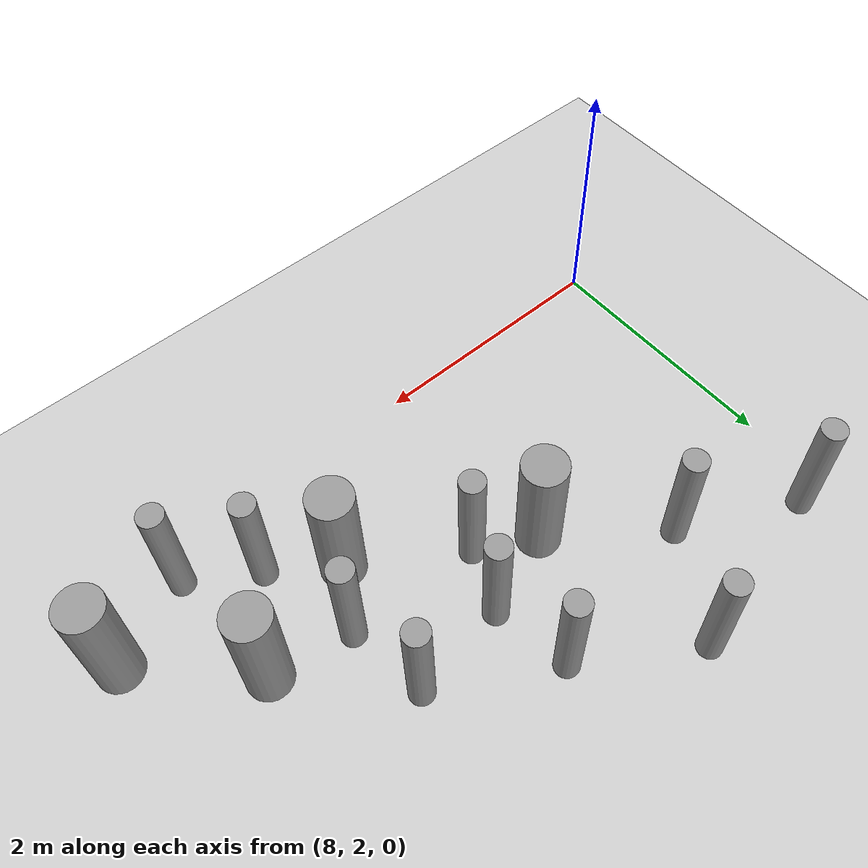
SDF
<sdf version="1.6">
 <world name="default">
  <model name="ground_plane">
   <static>1</static>
   <link name="link">
    <collision name="collision">
     <geometry><plane><normal>0 0 1</normal><size>100 100</size></plane></geometry>
     <surface><friction><ode><mu>100</mu><mu2>50</mu2></ode></friction></surface>
    </collision>
    <visual name="visual">
     <cast_shadows>0</cast_shadows>
     <geometry><plane><normal>0 0 1</normal><size>100 100</size></plane></geometry>
     <material>
      <script><uri>file://media/materials/scripts/gazebo.material</uri><name>Gazebo/Grey</name></script>
     </material>
    </visual>
   </link>
  </model>
  <model name="cyl_wall_clone_clone_1_clone_2">
   <link name="link_0">
    <pose>-2.73893 -0.366465 0 0 -0 0</pose>
    <inertial>
     <mass>0.0374993</mass>
     <inertia>
      <ixx>0.00321281</ixx>
      <ixy>0</ixy>
      <ixz>0</ixz>
      <iyy>0.00321281</iyy>
      <iyz>0</iyz>
      <izz>0.000175774</izz>
     </inertia>
    </inertial>
    <visual name="visual">
     <geometry><cylinder><radius>0.0968661</radius><length>1</length></cylinder></geometry>
     <material>
      <lighting>1</lighting>
      <script><uri>file://media/materials/scripts/gazebo.material</uri><name>Gazebo/Grey</name></script>
      <ambient>0.3 0.3 0.3 1</ambient>
      <diffuse>0.7 0.7 0.7 1</diffuse>
      <specular>0.01 0.01 0.01 1</specular>
      <emissive>0 0 0 1</emissive>
     </material>
    </visual>
    <collision name="collision">
     <geometry><cylinder><radius>0.096866</radius><length>1</length></cylinder></geometry>
     <surface>
      <friction>
       <ode><mu>1</mu><mu2>1</mu2><fdir1>0 0 0</fdir1><slip1>0</slip1><slip2>0</slip2></ode>
       <torsional>
        <coefficient>1</coefficient>
        <patch_radius>0</patch_radius>
        <surface_radius>0</surface_radius>
        <use_patch_radius>1</use_patch_radius>
        <ode><slip>0</slip></ode>
       </torsional>
      </friction>
      <bounce><restitution_coefficient>0</restitution_coefficient><threshold>1e+06</threshold></bounce>
      <contact>
       <collide_without_contact>0</collide_without_contact>
       <collide_without_contact_bitmask>1</collide_without_contact_bitmask>
       <collide_bitmask>1</collide_bitmask>
       <ode>
        <soft_cfm>0</soft_cfm>
        <soft_erp>0.2</soft_erp>
        <kp>1e+13</kp>
        <kd>1</kd>
        <max_vel>0.01</max_vel>
        <min_depth>0</min_depth>
       </ode>
       <bullet>
        <split_impulse>1</split_impulse>
        <split_impulse_penetration_threshold>-0.01</split_impulse_penetration_threshold>
        <soft_cfm>0</soft_cfm>
        <soft_erp>0.2</soft_erp>
        <kp>1e+13</kp>
        <kd>1</kd>
       </bullet>
      </contact>
     </surface>
    </collision>
   </link>
   <link name="link_0_clone">
    <pose>-1.73893 0.61877 0 0 -0 0</pose>
    <inertial>
     <mass>0.0374993</mass>
     <inertia>
      <ixx>0.00321281</ixx>
      <ixy>0</ixy>
      <ixz>0</ixz>
      <iyy>0.00321281</iyy>
      <iyz>0</iyz>
      <izz>0.000175774</izz>
     </inertia>
    </inertial>
    <visual name="visual">
     <geometry><cylinder><radius>0.0968661</radius><length>1</length></cylinder></geometry>
     <material>
      <lighting>1</lighting>
      <script><uri>file://media/materials/scripts/gazebo.material</uri><name>Gazebo/Grey</name></script>
      <ambient>0.3 0.3 0.3 1</ambient>
      <diffuse>0.7 0.7 0.7 1</diffuse>
      <specular>0.01 0.01 0.01 1</specular>
      <emissive>0 0 0 1</emissive>
      <shader type="pixel"/>
     </material>
    </visual>
    <collision name="collision">
     <geometry><cylinder><radius>0.096866</radius><length>1</length></cylinder></geometry>
     <surface>
      <friction>
       <ode><mu>1</mu><mu2>1</mu2><fdir1>0 0 0</fdir1><slip1>0</slip1><slip2>0</slip2></ode>
       <torsional>
        <coefficient>1</coefficient>
        <patch_radius>0</patch_radius>
        <surface_radius>0</surface_radius>
        <use_patch_radius>1</use_patch_radius>
        <ode><slip>0</slip></ode>
       </torsional>
      </friction>
      <bounce><restitution_coefficient>0</restitution_coefficient><threshold>1e+06</threshold></bounce>
      <contact>
       <collide_without_contact>0</collide_without_contact>
       <collide_without_contact_bitmask>1</collide_without_contact_bitmask>
       <collide_bitmask>1</collide_bitmask>
       <ode>
        <soft_cfm>0</soft_cfm>
        <soft_erp>0.2</soft_erp>
        <kp>1e+13</kp>
        <kd>1</kd>
        <max_vel>0.01</max_vel>
        <min_depth>0</min_depth>
       </ode>
       <bullet>
        <split_impulse>1</split_impulse>
        <split_impulse_penetration_threshold>-0.01</split_impulse_penetration_threshold>
        <soft_cfm>0</soft_cfm>
        <soft_erp>0.2</soft_erp>
        <kp>1e+13</kp>
        <kd>1</kd>
       </bullet>
      </contact>
     </surface>
    </collision>
   </link>
   <link name="link_0_clone_clone">
    <pose>-0.327073 0.143919 0 0 -0 0</pose>
    <inertial>
     <mass>0.0374993</mass>
     <inertia>
      <ixx>0.00321281</ixx>
      <ixy>0</ixy>
      <ixz>0</ixz>
      <iyy>0.00321281</iyy>
      <iyz>0</iyz>
      <izz>0.000175774</izz>
     </inertia>
    </inertial>
    <visual name="visual">
     <geometry><cylinder><radius>0.0968661</radius><length>1</length></cylinder></geometry>
     <material>
      <lighting>1</lighting>
      <script><uri>file://media/materials/scripts/gazebo.material</uri><name>Gazebo/Grey</name></script>
      <ambient>0.3 0.3 0.3 1</ambient>
      <diffuse>0.7 0.7 0.7 1</diffuse>
      <specular>0.01 0.01 0.01 1</specular>
      <emissive>0 0 0 1</emissive>
      <shader type="pixel"/>
     </material>
    </visual>
    <collision name="collision">
     <geometry><cylinder><radius>0.096866</radius><length>1</length></cylinder></geometry>
     <surface>
      <friction>
       <ode><mu>1</mu><mu2>1</mu2><fdir1>0 0 0</fdir1><slip1>0</slip1><slip2>0</slip2></ode>
       <torsional>
        <coefficient>1</coefficient>
        <patch_radius>0</patch_radius>
        <surface_radius>0</surface_radius>
        <use_patch_radius>1</use_patch_radius>
        <ode><slip>0</slip></ode>
       </torsional>
      </friction>
      <bounce><restitution_coefficient>0</restitution_coefficient><threshold>1e+06</threshold></bounce>
      <contact>
       <collide_without_contact>0</collide_without_contact>
       <collide_without_contact_bitmask>1</collide_without_contact_bitmask>
       <collide_bitmask>1</collide_bitmask>
       <ode>
        <soft_cfm>0</soft_cfm>
        <soft_erp>0.2</soft_erp>
        <kp>1e+13</kp>
        <kd>1</kd>
        <max_vel>0.01</max_vel>
        <min_depth>0</min_depth>
       </ode>
       <bullet>
        <split_impulse>1</split_impulse>
        <split_impulse_penetration_threshold>-0.01</split_impulse_penetration_threshold>
        <soft_cfm>0</soft_cfm>
        <soft_erp>0.2</soft_erp>
        <kp>1e+13</kp>
        <kd>1</kd>
       </bullet>
      </contact>
     </surface>
    </collision>
   </link>
   <link name="link_0_clone_clone_0">
    <pose>1.26107 -0.419359 0 0 -0 0</pose>
    <inertial>
     <mass>0.0374993</mass>
     <inertia>
      <ixx>0.00321281</ixx>
      <ixy>0</ixy>
      <ixz>0</ixz>
      <iyy>0.00321281</iyy>
      <iyz>0</iyz>
      <izz>0.000175774</izz>
     </inertia>
    </inertial>
    <visual name="visual">
     <geometry><cylinder><radius>0.0968661</radius><length>1</length></cylinder></geometry>
     <material>
      <lighting>1</lighting>
      <script><uri>file://media/materials/scripts/gazebo.material</uri><name>Gazebo/Grey</name></script>
      <ambient>0.3 0.3 0.3 1</ambient>
      <diffuse>0.7 0.7 0.7 1</diffuse>
      <specular>0.01 0.01 0.01 1</specular>
      <emissive>0 0 0 1</emissive>
      <shader type="pixel"/>
     </material>
    </visual>
    <collision name="collision">
     <geometry><cylinder><radius>0.096866</radius><length>1</length></cylinder></geometry>
     <surface>
      <friction>
       <ode><mu>1</mu><mu2>1</mu2><fdir1>0 0 0</fdir1><slip1>0</slip1><slip2>0</slip2></ode>
       <torsional>
        <coefficient>1</coefficient>
        <patch_radius>0</patch_radius>
        <surface_radius>0</surface_radius>
        <use_patch_radius>1</use_patch_radius>
        <ode><slip>0</slip></ode>
       </torsional>
      </friction>
      <bounce><restitution_coefficient>0</restitution_coefficient><threshold>1e+06</threshold></bounce>
      <contact>
       <collide_without_contact>0</collide_without_contact>
       <collide_without_contact_bitmask>1</collide_without_contact_bitmask>
       <collide_bitmask>1</collide_bitmask>
       <ode>
        <soft_cfm>0</soft_cfm>
        <soft_erp>0.2</soft_erp>
        <kp>1e+13</kp>
        <kd>1</kd>
        <max_vel>0.01</max_vel>
        <min_depth>0</min_depth>
       </ode>
       <bullet>
        <split_impulse>1</split_impulse>
        <split_impulse_penetration_threshold>-0.01</split_impulse_penetration_threshold>
        <soft_cfm>0</soft_cfm>
        <soft_erp>0.2</soft_erp>
        <kp>1e+13</kp>
        <kd>1</kd>
       </bullet>
      </contact>
     </surface>
    </collision>
   </link>
   <link name="link_0_clone_clone_1">
    <pose>-1.73893 -0.277168 0 0 -0 0</pose>
    <inertial>
     <mass>0.0374993</mass>
     <inertia>
      <ixx>0.00321281</ixx>
      <ixy>0</ixy>
      <ixz>0</ixz>
      <iyy>0.00321281</iyy>
      <iyz>0</iyz>
      <izz>0.000175774</izz>
     </inertia>
    </inertial>
    <visual name="visual">
     <geometry><cylinder><radius>0.0968661</radius><length>1</length></cylinder></geometry>
     <material>
      <lighting>1</lighting>
      <script><uri>file://media/materials/scripts/gazebo.material</uri><name>Gazebo/Grey</name></script>
      <ambient>0.3 0.3 0.3 1</ambient>
      <diffuse>0.7 0.7 0.7 1</diffuse>
      <specular>0.01 0.01 0.01 1</specular>
      <emissive>0 0 0 1</emissive>
      <shader type="pixel"/>
     </material>
    </visual>
    <collision name="collision">
     <geometry><cylinder><radius>0.096866</radius><length>1</length></cylinder></geometry>
     <surface>
      <friction>
       <ode><mu>1</mu><mu2>1</mu2><fdir1>0 0 0</fdir1><slip1>0</slip1><slip2>0</slip2></ode>
       <torsional>
        <coefficient>1</coefficient>
        <patch_radius>0</patch_radius>
        <surface_radius>0</surface_radius>
        <use_patch_radius>1</use_patch_radius>
        <ode><slip>0</slip></ode>
       </torsional>
      </friction>
      <bounce><restitution_coefficient>0</restitution_coefficient><threshold>1e+06</threshold></bounce>
      <contact>
       <collide_without_contact>0</collide_without_contact>
       <collide_without_contact_bitmask>1</collide_without_contact_bitmask>
       <collide_bitmask>1</collide_bitmask>
       <ode>
        <soft_cfm>0</soft_cfm>
        <soft_erp>0.2</soft_erp>
        <kp>1e+13</kp>
        <kd>1</kd>
        <max_vel>0.01</max_vel>
        <min_depth>0</min_depth>
       </ode>
       <bullet>
        <split_impulse>1</split_impulse>
        <split_impulse_penetration_threshold>-0.01</split_impulse_penetration_threshold>
        <soft_cfm>0</soft_cfm>
        <soft_erp>0.2</soft_erp>
        <kp>1e+13</kp>
        <kd>1</kd>
       </bullet>
      </contact>
     </surface>
    </collision>
   </link>
   <link name="link_0_clone_clone_2">
    <pose>-0.738934 0.593961 0 0 -0 0</pose>
    <inertial>
     <mass>0.0374993</mass>
     <inertia>
      <ixx>0.00321281</ixx>
      <ixy>0</ixy>
      <ixz>0</ixz>
      <iyy>0.00321281</iyy>
      <iyz>0</iyz>
      <izz>0.000175774</izz>
     </inertia>
    </inertial>
    <visual name="visual">
     <geometry><cylinder><radius>0.0968661</radius><length>1</length></cylinder></geometry>
     <material>
      <lighting>1</lighting>
      <script><uri>file://media/materials/scripts/gazebo.material</uri><name>Gazebo/Grey</name></script>
      <ambient>0.3 0.3 0.3 1</ambient>
      <diffuse>0.7 0.7 0.7 1</diffuse>
      <specular>0.01 0.01 0.01 1</specular>
      <emissive>0 0 0 1</emissive>
      <shader type="pixel"/>
     </material>
    </visual>
    <collision name="collision">
     <geometry><cylinder><radius>0.096866</radius><length>1</length></cylinder></geometry>
     <surface>
      <friction>
       <ode><mu>1</mu><mu2>1</mu2><fdir1>0 0 0</fdir1><slip1>0</slip1><slip2>0</slip2></ode>
       <torsional>
        <coefficient>1</coefficient>
        <patch_radius>0</patch_radius>
        <surface_radius>0</surface_radius>
        <use_patch_radius>1</use_patch_radius>
        <ode><slip>0</slip></ode>
       </torsional>
      </friction>
      <bounce><restitution_coefficient>0</restitution_coefficient><threshold>1e+06</threshold></bounce>
      <contact>
       <collide_without_contact>0</collide_without_contact>
       <collide_without_contact_bitmask>1</collide_without_contact_bitmask>
       <collide_bitmask>1</collide_bitmask>
       <ode>
        <soft_cfm>0</soft_cfm>
        <soft_erp>0.2</soft_erp>
        <kp>1e+13</kp>
        <kd>1</kd>
        <max_vel>0.01</max_vel>
        <min_depth>0</min_depth>
       </ode>
       <bullet>
        <split_impulse>1</split_impulse>
        <split_impulse_penetration_threshold>-0.01</split_impulse_penetration_threshold>
        <soft_cfm>0</soft_cfm>
        <soft_erp>0.2</soft_erp>
        <kp>1e+13</kp>
        <kd>1</kd>
       </bullet>
      </contact>
     </surface>
    </collision>
   </link>
   <link name="link_0_clone_clone_3">
    <pose>0.261066 0.624849 0 0 -0 0</pose>
    <inertial>
     <mass>0.0374993</mass>
     <inertia>
      <ixx>0.00321281</ixx>
      <ixy>0</ixy>
      <ixz>0</ixz>
      <iyy>0.00321281</iyy>
      <iyz>0</iyz>
      <izz>0.000175774</izz>
     </inertia>
    </inertial>
    <visual name="visual">
     <geometry><cylinder><radius>0.0968661</radius><length>1</length></cylinder></geometry>
     <material>
      <lighting>1</lighting>
      <script><uri>file://media/materials/scripts/gazebo.material</uri><name>Gazebo/Grey</name></script>
      <ambient>0.3 0.3 0.3 1</ambient>
      <diffuse>0.7 0.7 0.7 1</diffuse>
      <specular>0.01 0.01 0.01 1</specular>
      <emissive>0 0 0 1</emissive>
      <shader type="pixel"/>
     </material>
    </visual>
    <collision name="collision">
     <geometry><cylinder><radius>0.096866</radius><length>1</length></cylinder></geometry>
     <surface>
      <friction>
       <ode><mu>1</mu><mu2>1</mu2><fdir1>0 0 0</fdir1><slip1>0</slip1><slip2>0</slip2></ode>
       <torsional>
        <coefficient>1</coefficient>
        <patch_radius>0</patch_radius>
        <surface_radius>0</surface_radius>
        <use_patch_radius>1</use_patch_radius>
        <ode><slip>0</slip></ode>
       </torsional>
      </friction>
      <bounce><restitution_coefficient>0</restitution_coefficient><threshold>1e+06</threshold></bounce>
      <contact>
       <collide_without_contact>0</collide_without_contact>
       <collide_without_contact_bitmask>1</collide_without_contact_bitmask>
       <collide_bitmask>1</collide_bitmask>
       <ode>
        <soft_cfm>0</soft_cfm>
        <soft_erp>0.2</soft_erp>
        <kp>1e+13</kp>
        <kd>1</kd>
        <max_vel>0.01</max_vel>
        <min_depth>0</min_depth>
       </ode>
       <bullet>
        <split_impulse>1</split_impulse>
        <split_impulse_penetration_threshold>-0.01</split_impulse_penetration_threshold>
        <soft_cfm>0</soft_cfm>
        <soft_erp>0.2</soft_erp>
        <kp>1e+13</kp>
        <kd>1</kd>
       </bullet>
      </contact>
     </surface>
    </collision>
   </link>
   <link name="link_0_clone_clone_4">
    <pose>-0.239049 -0.353105 0 0 -0 0</pose>
    <inertial>
     <mass>0.0374993</mass>
     <inertia>
      <ixx>0.00321281</ixx>
      <ixy>0</ixy>
      <ixz>0</ixz>
      <iyy>0.00321281</iyy>
      <iyz>0</iyz>
      <izz>0.000175774</izz>
     </inertia>
    </inertial>
    <visual name="visual">
     <geometry><cylinder><radius>0.0968661</radius><length>1</length></cylinder></geometry>
     <material>
      <lighting>1</lighting>
      <script><uri>file://media/materials/scripts/gazebo.material</uri><name>Gazebo/Grey</name></script>
      <ambient>0.3 0.3 0.3 1</ambient>
      <diffuse>0.7 0.7 0.7 1</diffuse>
      <specular>0.01 0.01 0.01 1</specular>
      <emissive>0 0 0 1</emissive>
      <shader type="pixel"/>
     </material>
    </visual>
    <collision name="collision">
     <geometry><cylinder><radius>0.096866</radius><length>1</length></cylinder></geometry>
     <surface>
      <friction>
       <ode><mu>1</mu><mu2>1</mu2><fdir1>0 0 0</fdir1><slip1>0</slip1><slip2>0</slip2></ode>
       <torsional>
        <coefficient>1</coefficient>
        <patch_radius>0</patch_radius>
        <surface_radius>0</surface_radius>
        <use_patch_radius>1</use_patch_radius>
        <ode><slip>0</slip></ode>
       </torsional>
      </friction>
      <bounce><restitution_coefficient>0</restitution_coefficient><threshold>1e+06</threshold></bounce>
      <contact>
       <collide_without_contact>0</collide_without_contact>
       <collide_without_contact_bitmask>1</collide_without_contact_bitmask>
       <collide_bitmask>1</collide_bitmask>
       <ode>
        <soft_cfm>0</soft_cfm>
        <soft_erp>0.2</soft_erp>
        <kp>1e+13</kp>
        <kd>1</kd>
        <max_vel>0.01</max_vel>
        <min_depth>0</min_depth>
       </ode>
       <bullet>
        <split_impulse>1</split_impulse>
        <split_impulse_penetration_threshold>-0.01</split_impulse_penetration_threshold>
        <soft_cfm>0</soft_cfm>
        <soft_erp>0.2</soft_erp>
        <kp>1e+13</kp>
        <kd>1</kd>
       </bullet>
      </contact>
     </surface>
    </collision>
   </link>
   <link name="link_0_clone_clone_5">
    <pose>0.672792 0.143919 0 0 -0 0</pose>
    <inertial>
     <mass>0.0374993</mass>
     <inertia>
      <ixx>0.00321281</ixx>
      <ixy>0</ixy>
      <ixz>0</ixz>
      <iyy>0.00321281</iyy>
      <iyz>0</iyz>
      <izz>0.000175774</izz>
     </inertia>
    </inertial>
    <visual name="visual">
     <geometry><cylinder><radius>0.0968661</radius><length>1</length></cylinder></geometry>
     <material>
      <lighting>1</lighting>
      <script><uri>file://media/materials/scripts/gazebo.material</uri><name>Gazebo/Grey</name></script>
      <ambient>0.3 0.3 0.3 1</ambient>
      <diffuse>0.7 0.7 0.7 1</diffuse>
      <specular>0.01 0.01 0.01 1</specular>
      <emissive>0 0 0 1</emissive>
      <shader type="pixel"/>
     </material>
    </visual>
    <collision name="collision">
     <geometry><cylinder><radius>0.096866</radius><length>1</length></cylinder></geometry>
     <surface>
      <friction>
       <ode><mu>1</mu><mu2>1</mu2><fdir1>0 0 0</fdir1><slip1>0</slip1><slip2>0</slip2></ode>
       <torsional>
        <coefficient>1</coefficient>
        <patch_radius>0</patch_radius>
        <surface_radius>0</surface_radius>
        <use_patch_radius>1</use_patch_radius>
        <ode><slip>0</slip></ode>
       </torsional>
      </friction>
      <bounce><restitution_coefficient>0</restitution_coefficient><threshold>1e+06</threshold></bounce>
      <contact>
       <collide_without_contact>0</collide_without_contact>
       <collide_without_contact_bitmask>1</collide_without_contact_bitmask>
       <collide_bitmask>1</collide_bitmask>
       <ode>
        <soft_cfm>0</soft_cfm>
        <soft_erp>0.2</soft_erp>
        <kp>1e+13</kp>
        <kd>1</kd>
        <max_vel>0.01</max_vel>
        <min_depth>0</min_depth>
       </ode>
       <bullet>
        <split_impulse>1</split_impulse>
        <split_impulse_penetration_threshold>-0.01</split_impulse_penetration_threshold>
        <soft_cfm>0</soft_cfm>
        <soft_erp>0.2</soft_erp>
        <kp>1e+13</kp>
        <kd>1</kd>
       </bullet>
      </contact>
     </surface>
    </collision>
   </link>
   <link name="link_0_clone_clone_6">
    <pose>1.84596 -0.433423 0 0 -0 0</pose>
    <inertial>
     <mass>0.0374993</mass>
     <inertia>
      <ixx>0.00321281</ixx>
      <ixy>0</ixy>
      <ixz>0</ixz>
      <iyy>0.00321281</iyy>
      <iyz>0</iyz>
      <izz>0.000175774</izz>
     </inertia>
    </inertial>
    <visual name="visual">
     <geometry><cylinder><radius>0.0968661</radius><length>1</length></cylinder></geometry>
     <material>
      <lighting>1</lighting>
      <script><uri>file://media/materials/scripts/gazebo.material</uri><name>Gazebo/Grey</name></script>
      <ambient>0.3 0.3 0.3 1</ambient>
      <diffuse>0.7 0.7 0.7 1</diffuse>
      <specular>0.01 0.01 0.01 1</specular>
      <emissive>0 0 0 1</emissive>
      <shader type="pixel"/>
     </material>
    </visual>
    <collision name="collision">
     <geometry><cylinder><radius>0.096866</radius><length>1</length></cylinder></geometry>
     <surface>
      <friction>
       <ode><mu>1</mu><mu2>1</mu2><fdir1>0 0 0</fdir1><slip1>0</slip1><slip2>0</slip2></ode>
       <torsional>
        <coefficient>1</coefficient>
        <patch_radius>0</patch_radius>
        <surface_radius>0</surface_radius>
        <use_patch_radius>1</use_patch_radius>
        <ode><slip>0</slip></ode>
       </torsional>
      </friction>
      <bounce><restitution_coefficient>0</restitution_coefficient><threshold>1e+06</threshold></bounce>
      <contact>
       <collide_without_contact>0</collide_without_contact>
       <collide_without_contact_bitmask>1</collide_without_contact_bitmask>
       <collide_bitmask>1</collide_bitmask>
       <ode>
        <soft_cfm>0</soft_cfm>
        <soft_erp>0.2</soft_erp>
        <kp>1e+13</kp>
        <kd>1</kd>
        <max_vel>0.01</max_vel>
        <min_depth>0</min_depth>
       </ode>
       <bullet>
        <split_impulse>1</split_impulse>
        <split_impulse_penetration_threshold>-0.01</split_impulse_penetration_threshold>
        <soft_cfm>0</soft_cfm>
        <soft_erp>0.2</soft_erp>
        <kp>1e+13</kp>
        <kd>1</kd>
       </bullet>
      </contact>
     </surface>
    </collision>
   </link>
   <link name="link_1">
    <pose>-0.738934 -0.397931 0 0 -0 0</pose>
    <inertial>
     <mass>0.117398</mass>
     <inertia>
      <ixx>0.0106445</ixx>
      <ixy>0</ixy>
      <ixz>0</ixz>
      <iyy>0.0106445</iyy>
      <iyz>0</iyz>
      <izz>0.00172278</izz>
     </inertia>
    </inertial>
    <visual name="visual">
     <geometry><cylinder><radius>0.171317</radius><length>1</length></cylinder></geometry>
     <material>
      <lighting>1</lighting>
      <script><uri>file://media/materials/scripts/gazebo.material</uri><name>Gazebo/Grey</name></script>
      <ambient>0.3 0.3 0.3 1</ambient>
      <diffuse>0.7 0.7 0.7 1</diffuse>
      <specular>0.01 0.01 0.01 1</specular>
      <emissive>0 0 0 1</emissive>
     </material>
    </visual>
    <collision name="collision">
     <geometry><cylinder><radius>0.171317</radius><length>1</length></cylinder></geometry>
     <surface>
      <friction>
       <ode><mu>1</mu><mu2>1</mu2><fdir1>0 0 0</fdir1><slip1>0</slip1><slip2>0</slip2></ode>
       <torsional>
        <coefficient>1</coefficient>
        <patch_radius>0</patch_radius>
        <surface_radius>0</surface_radius>
        <use_patch_radius>1</use_patch_radius>
        <ode><slip>0</slip></ode>
       </torsional>
      </friction>
      <bounce><restitution_coefficient>0</restitution_coefficient><threshold>1e+06</threshold></bounce>
      <contact>
       <collide_without_contact>0</collide_without_contact>
       <collide_without_contact_bitmask>1</collide_without_contact_bitmask>
       <collide_bitmask>1</collide_bitmask>
       <ode>
        <soft_cfm>0</soft_cfm>
        <soft_erp>0.2</soft_erp>
        <kp>1e+13</kp>
        <kd>1</kd>
        <max_vel>0.01</max_vel>
        <min_depth>0</min_depth>
       </ode>
       <bullet>
        <split_impulse>1</split_impulse>
        <split_impulse_penetration_threshold>-0.01</split_impulse_penetration_threshold>
        <soft_cfm>0</soft_cfm>
        <soft_erp>0.2</soft_erp>
        <kp>1e+13</kp>
        <kd>1</kd>
       </bullet>
      </contact>
     </surface>
    </collision>
   </link>
   <link name="link_1_clone">
    <pose>0.697784 -0.380861 0 0 -0 0</pose>
    <inertial>
     <mass>0.117398</mass>
     <inertia>
      <ixx>0.0106445</ixx>
      <ixy>0</ixy>
      <ixz>0</ixz>
      <iyy>0.0106445</iyy>
      <iyz>0</iyz>
      <izz>0.00172278</izz>
     </inertia>
    </inertial>
    <visual name="visual">
     <geometry><cylinder><radius>0.171317</radius><length>1</length></cylinder></geometry>
     <material>
      <lighting>1</lighting>
      <script><uri>file://media/materials/scripts/gazebo.material</uri><name>Gazebo/Grey</name></script>
      <ambient>0.3 0.3 0.3 1</ambient>
      <diffuse>0.7 0.7 0.7 1</diffuse>
      <specular>0.01 0.01 0.01 1</specular>
      <emissive>0 0 0 1</emissive>
      <shader type="pixel"/>
     </material>
    </visual>
    <collision name="collision">
     <geometry><cylinder><radius>0.171317</radius><length>1</length></cylinder></geometry>
     <surface>
      <friction>
       <ode><mu>1</mu><mu2>1</mu2><fdir1>0 0 0</fdir1><slip1>0</slip1><slip2>0</slip2></ode>
       <torsional>
        <coefficient>1</coefficient>
        <patch_radius>0</patch_radius>
        <surface_radius>0</surface_radius>
        <use_patch_radius>1</use_patch_radius>
        <ode><slip>0</slip></ode>
       </torsional>
      </friction>
      <bounce><restitution_coefficient>0</restitution_coefficient><threshold>1e+06</threshold></bounce>
      <contact>
       <collide_without_contact>0</collide_without_contact>
       <collide_without_contact_bitmask>1</collide_without_contact_bitmask>
       <collide_bitmask>1</collide_bitmask>
       <ode>
        <soft_cfm>0</soft_cfm>
        <soft_erp>0.2</soft_erp>
        <kp>1e+13</kp>
        <kd>1</kd>
        <max_vel>0.01</max_vel>
        <min_depth>0</min_depth>
       </ode>
       <bullet>
        <split_impulse>1</split_impulse>
        <split_impulse_penetration_threshold>-0.01</split_impulse_penetration_threshold>
        <soft_cfm>0</soft_cfm>
        <soft_erp>0.2</soft_erp>
        <kp>1e+13</kp>
        <kd>1</kd>
       </bullet>
      </contact>
     </surface>
    </collision>
   </link>
   <link name="link_1_clone_0">
    <pose>1.26107 0.358974 0 0 -0 0</pose>
    <inertial>
     <mass>0.117398</mass>
     <inertia>
      <ixx>0.0106445</ixx>
      <ixy>0</ixy>
      <ixz>0</ixz>
      <iyy>0.0106445</iyy>
      <iyz>0</iyz>
      <izz>0.00172278</izz>
     </inertia>
    </inertial>
    <visual name="visual">
     <geometry><cylinder><radius>0.171317</radius><length>1</length></cylinder></geometry>
     <material>
      <lighting>1</lighting>
      <script><uri>file://media/materials/scripts/gazebo.material</uri><name>Gazebo/Grey</name></script>
      <ambient>0.3 0.3 0.3 1</ambient>
      <diffuse>0.7 0.7 0.7 1</diffuse>
      <specular>0.01 0.01 0.01 1</specular>
      <emissive>0 0 0 1</emissive>
      <shader type="pixel"/>
     </material>
    </visual>
    <collision name="collision">
     <geometry><cylinder><radius>0.171317</radius><length>1</length></cylinder></geometry>
     <surface>
      <friction>
       <ode><mu>1</mu><mu2>1</mu2><fdir1>0 0 0</fdir1><slip1>0</slip1><slip2>0</slip2></ode>
       <torsional>
        <coefficient>1</coefficient>
        <patch_radius>0</patch_radius>
        <surface_radius>0</surface_radius>
        <use_patch_radius>1</use_patch_radius>
        <ode><slip>0</slip></ode>
       </torsional>
      </friction>
      <bounce><restitution_coefficient>0</restitution_coefficient><threshold>1e+06</threshold></bounce>
      <contact>
       <collide_without_contact>0</collide_without_contact>
       <collide_without_contact_bitmask>1</collide_without_contact_bitmask>
       <collide_bitmask>1</collide_bitmask>
       <ode>
        <soft_cfm>0</soft_cfm>
        <soft_erp>0.2</soft_erp>
        <kp>1e+13</kp>
        <kd>1</kd>
        <max_vel>0.01</max_vel>
        <min_depth>0</min_depth>
       </ode>
       <bullet>
        <split_impulse>1</split_impulse>
        <split_impulse_penetration_threshold>-0.01</split_impulse_penetration_threshold>
        <soft_cfm>0</soft_cfm>
        <soft_erp>0.2</soft_erp>
        <kp>1e+13</kp>
        <kd>1</kd>
       </bullet>
      </contact>
     </surface>
    </collision>
   </link>
   <link name="link_1_clone_1">
    <pose>2.26107 0.143919 0 0 -0 0</pose>
    <inertial>
     <mass>0.117398</mass>
     <inertia>
      <ixx>0.0106445</ixx>
      <ixy>0</ixy>
      <ixz>0</ixz>
      <iyy>0.0106445</iyy>
      <iyz>0</iyz>
      <izz>0.00172278</izz>
     </inertia>
    </inertial>
    <visual name="visual">
     <geometry><cylinder><radius>0.171317</radius><length>1</length></cylinder></geometry>
     <material>
      <lighting>1</lighting>
      <script><uri>file://media/materials/scripts/gazebo.material</uri><name>Gazebo/Grey</name></script>
      <ambient>0.3 0.3 0.3 1</ambient>
      <diffuse>0.7 0.7 0.7 1</diffuse>
      <specular>0.01 0.01 0.01 1</specular>
      <emissive>0 0 0 1</emissive>
      <shader type="pixel"/>
     </material>
    </visual>
    <collision name="collision">
     <geometry><cylinder><radius>0.171317</radius><length>1</length></cylinder></geometry>
     <surface>
      <friction>
       <ode><mu>1</mu><mu2>1</mu2><fdir1>0 0 0</fdir1><slip1>0</slip1><slip2>0</slip2></ode>
       <torsional>
        <coefficient>1</coefficient>
        <patch_radius>0</patch_radius>
        <surface_radius>0</surface_radius>
        <use_patch_radius>1</use_patch_radius>
        <ode><slip>0</slip></ode>
       </torsional>
      </friction>
      <bounce><restitution_coefficient>0</restitution_coefficient><threshold>1e+06</threshold></bounce>
      <contact>
       <collide_without_contact>0</collide_without_contact>
       <collide_without_contact_bitmask>1</collide_without_contact_bitmask>
       <collide_bitmask>1</collide_bitmask>
       <ode>
        <soft_cfm>0</soft_cfm>
        <soft_erp>0.2</soft_erp>
        <kp>1e+13</kp>
        <kd>1</kd>
        <max_vel>0.01</max_vel>
        <min_depth>0</min_depth>
       </ode>
       <bullet>
        <split_impulse>1</split_impulse>
        <split_impulse_penetration_threshold>-0.01</split_impulse_penetration_threshold>
        <soft_cfm>0</soft_cfm>
        <soft_erp>0.2</soft_erp>
        <kp>1e+13</kp>
        <kd>1</kd>
       </bullet>
      </contact>
     </surface>
    </collision>
   </link>
   <static>1</static>
   <pose>10.7908 3.58261 0.5 0 0 -0.549185</pose>
  </model>
 </world>
</sdf>
